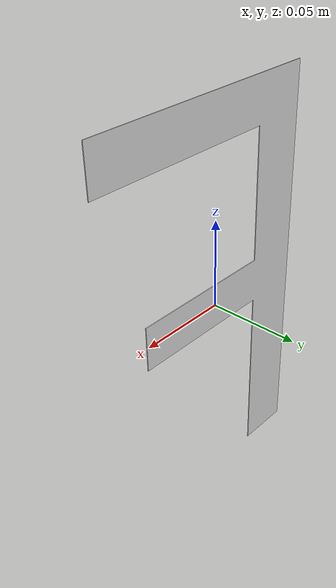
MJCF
<mujoco model="scene_F_edit">
  <compiler angle="degree" meshdir="meshes" texturedir="textures"/>
  <option gravity="0 0 -9.81"/>
  <default>
    <joint armature="0.01" damping="0.5"/>
    <default class="visual">
      <geom contype="0" conaffinity="0" group="2"/>
    </default>
    <default class="collision">
      <geom rgba="0.9 0.9 0.0 0.2" group="3"/>
    </default>
  </default>
  <asset>
    <material name="M_mat0_006" rgba="0.8471 0.8471 0.8471 1.0000"/>
    <mesh name="ImagetostlMesh0005" file="ImagetostlMesh0005.obj" inertia="shell"/>
  </asset>
  <worldbody>
    <body name="imagetostl_mesh_0_005" pos="0.000000 0.000000 0.000000" quat="-0.000000 1.000000 0.000000 0.000000">
      <geom type="mesh" mesh="ImagetostlMesh0005" class="visual" material="M_mat0_006"/>
      <geom name="imagetostl_mesh_0005_aabb" type="box" pos="0.0072 -0.0000 0.0015" size="0.0716 0.0050 0.1166" class="collision"/>
    </body>
  </worldbody>
</mujoco>
